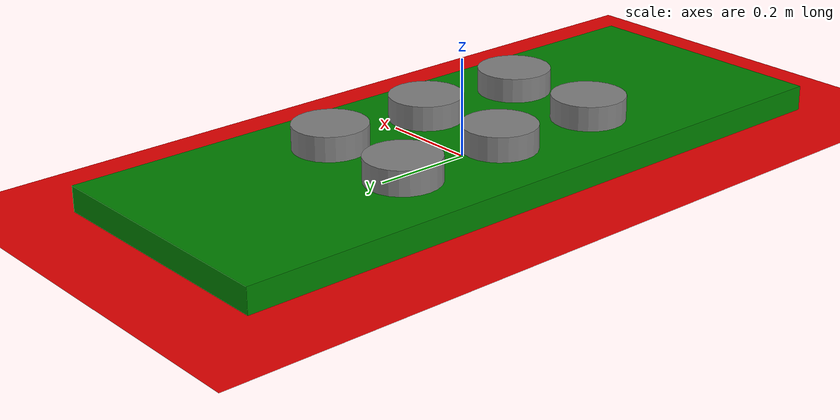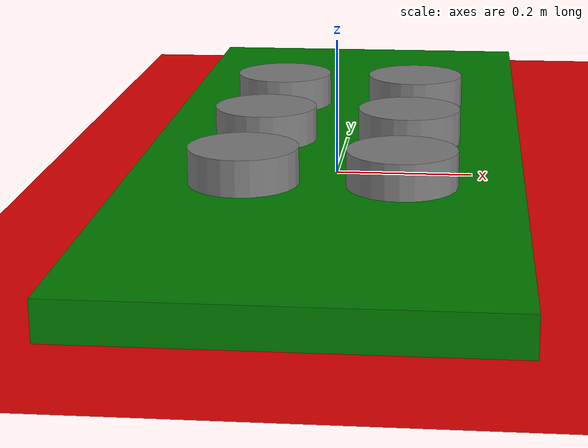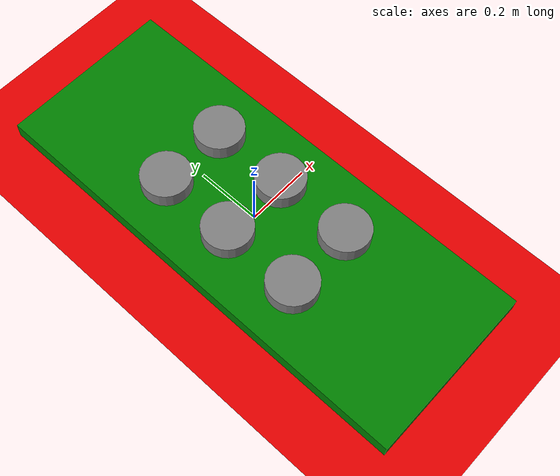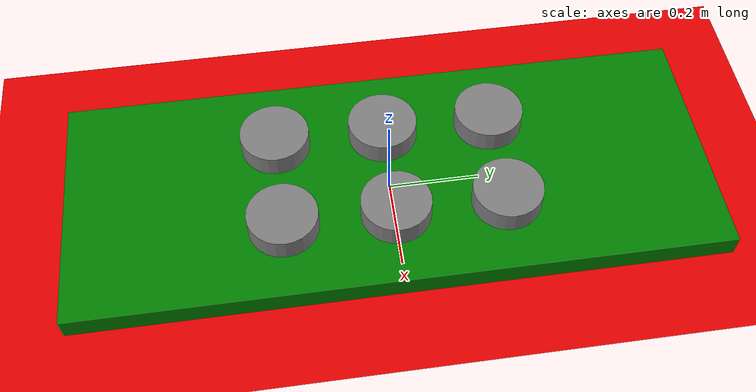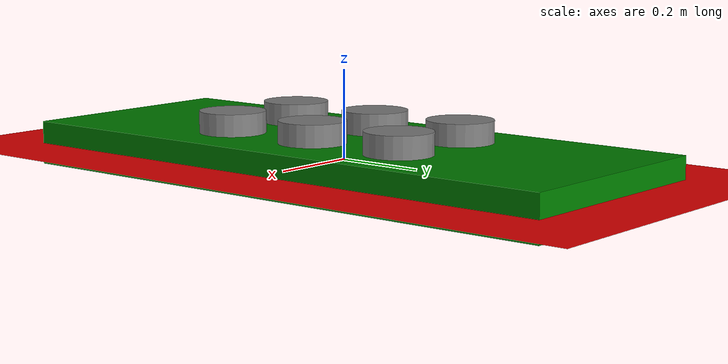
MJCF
<mujoco>
    <worldbody>
        <light diffuse=".5 .5 .5" pos="0 0 3" dir="0 0 -1"/>
        <!--ライト-->
        <geom type="plane" size="1 1 0.1" rgba=".9 0 0 1"/>

        <body pos='0 0 0'>
            <geom type='box' size='0.270 0.6955 0.05' rgba='0 0.5 0 1'/>
            <body pos='-0.1065 0 0.05' name='r-center'>
                <geom type='cylinder' size='0.075 0.05'/>
            </body>

            <body pos='-0.1065 0.237 0.05' name='r-top'>
                <geom type='cylinder' size='0.075 0.05'/>
            </body>

            <body pos='-0.1065 -0.237 0.05' name='r-bottom'>
                <geom type='cylinder' size='0.075 0.05'/>
            </body>

            <body pos='+0.1065 0 0.05' name='l-center'>
                <geom type='cylinder' size='0.075 0.05'/>
            </body>

            <body pos='0.1065 0.237 0.05' name='l-top'>
                <geom type='cylinder' size='0.075 0.05'/>
            </body>

            <body pos='0.1065 -0.237 0.05' name='l-bottom'>
                <geom type='cylinder' size='0.075 0.05'/>
            </body>
        </body>
    </worldbody>
</mujoco>
